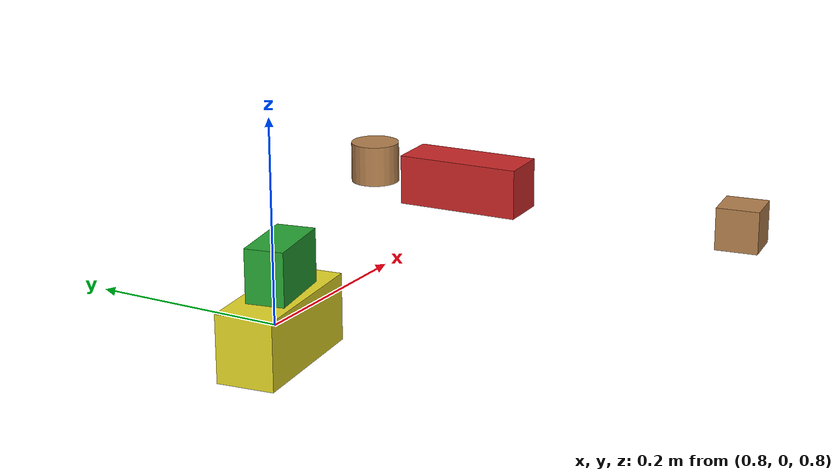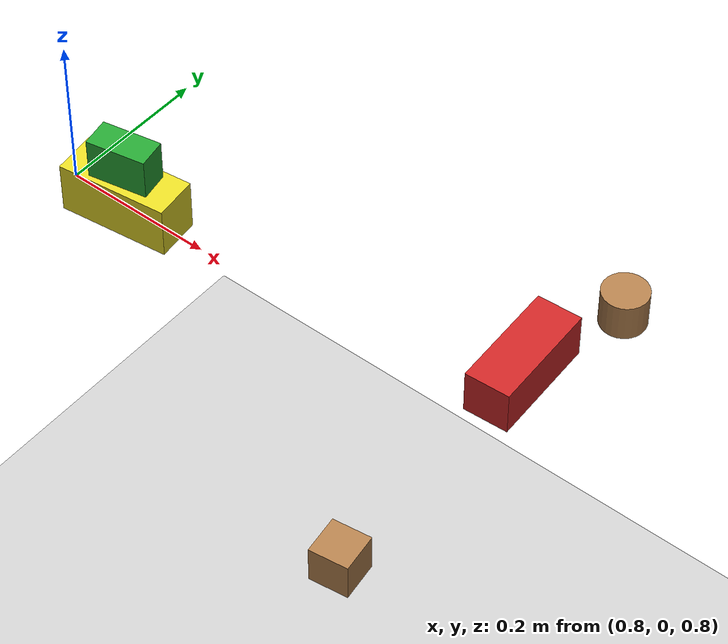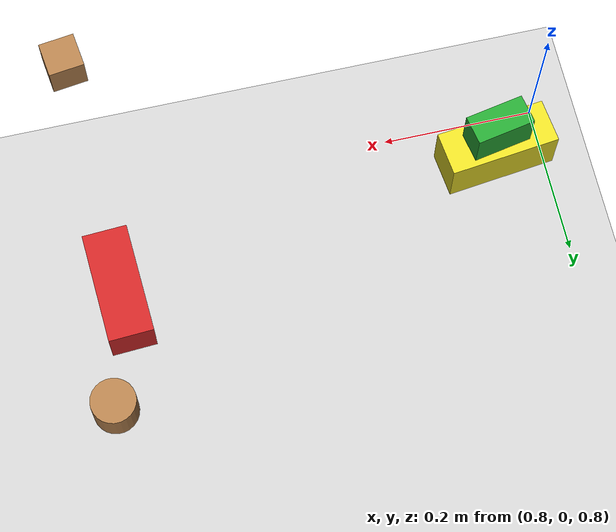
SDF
<sdf version="1.4">
 <world name="default">
  <light name="sun" type="directional">
   <pose>0 0 10 0 -0 0</pose>
   <diffuse>0.8 0.8 0.8 1</diffuse>
   <specular>0.2 0.2 0.2 1</specular>
   <attenuation>
    <range>1000</range>
    <constant>0.9</constant>
    <linear>0.01</linear>
    <quadratic>0.001</quadratic>
   </attenuation>
   <direction>-0.5 0.1 -0.9</direction>
  </light>
  <scene><shadows>0</shadows><ambient>0.4 0.4 0.4 1</ambient><background>0.7 0.7 0.7 1</background></scene>
  <model name="ground_plane">
   <static>1</static>
   <link name="link">
    <collision name="collision">
     <geometry><plane><normal>0 0 1</normal><size>100 100</size></plane></geometry>
     <surface><friction><ode><mu>100</mu><mu2>50</mu2></ode></friction></surface>
    </collision>
    <visual name="visual">
     <cast_shadows>0</cast_shadows>
     <geometry><plane><normal>0 0 1</normal><size>100 100</size></plane></geometry>
     <material>
      <script><uri>file://media/materials/scripts/gazebo.material</uri><name>Gazebo/Grey</name></script>
     </material>
    </visual>
    <velocity_decay><linear>0</linear><angular>0</angular></velocity_decay>
   </link>
  </model>
  <physics type="ode">
   <max_step_size>0.001</max_step_size>
   <real_time_factor>1</real_time_factor>
   <real_time_update_rate>1000</real_time_update_rate>
   <gravity>0 0 -9.8</gravity>
  </physics>
  <spherical_coordinates>
   <surface_model>EARTH_WGS84</surface_model>
   <latitude_deg>0</latitude_deg>
   <longitude_deg>0</longitude_deg>
   <elevation>0</elevation>
   <heading_deg>0</heading_deg>
  </spherical_coordinates>
  <model name="wood_cube_5cm">
   <link name="link">
    <pose>0 0 0.05 0 -0 0</pose>
    <inertial>
     <mass>0.01</mass>
     <inertia>
      <ixx>0.000101167</ixx>
      <ixy>0</ixy>
      <ixz>0</ixz>
      <iyy>6.1167e-05</iyy>
      <iyz>0</iyz>
      <izz>6.1167e-05</izz>
     </inertia>
    </inertial>
    <collision name="collision">
     <geometry><box><size>0.05 0.05 0.05</size></box></geometry>
     <surface><contact><ode><max_vel>0.1</max_vel><min_depth>0.001</min_depth></ode></contact></surface>
    </collision>
    <visual name="visual">
     <geometry><box><size>0.05 0.05 0.05</size></box></geometry>
     <material>
      <script><uri>file://media/materials/scripts/gazebo.material</uri><name>Gazebo/Wood</name></script>
     </material>
    </visual>
    <velocity_decay><linear>0</linear><angular>0</angular></velocity_decay>
   </link>
   <pose>1.40035 -0.231091 0.714992 -1e-06 -7.8e-05 0.135269</pose>
   <static>0</static>
  </model>
  <model name="wood_cylinder_5x2cm">
   <link name="link">
    <pose>0 0 0.05 0 -0 0</pose>
    <inertial>
     <mass>0.01</mass>
     <inertia>
      <ixx>0.000101167</ixx>
      <ixy>0</ixy>
      <ixz>0</ixz>
      <iyy>6.1167e-05</iyy>
      <iyz>0</iyz>
      <izz>6.1167e-05</izz>
     </inertia>
    </inertial>
    <collision name="collision">
     <geometry><cylinder><radius>0.03</radius><length>0.05</length></cylinder></geometry>
     <surface><contact><ode><max_vel>0.1</max_vel><min_depth>0.001</min_depth></ode></contact></surface>
    </collision>
    <visual name="visual">
     <geometry><cylinder><radius>0.03</radius><length>0.05</length></cylinder></geometry>
     <material>
      <script><uri>file://media/materials/scripts/gazebo.material</uri><name>Gazebo/Wood</name></script>
     </material>
    </visual>
    <velocity_decay><linear>0</linear><angular>0</angular></velocity_decay>
   </link>
   <pose>1.42039 0.268882 0.714983 -2.9e-05 -0.000268 3.01313</pose>
   <static>0</static>
  </model>
  <model name="rectangle_green">
   <link name="link">
    <pose>0 0 0.05 0 -0 0</pose>
    <inertial>
     <mass>0.01</mass>
     <inertia>
      <ixx>0.000101167</ixx>
      <ixy>0</ixy>
      <ixz>0</ixz>
      <iyy>6.1167e-05</iyy>
      <iyz>0</iyz>
      <izz>6.1167e-05</izz>
     </inertia>
    </inertial>
    <collision name="collision">
     <geometry><box><size>0.06 0.08 0.04</size></box></geometry>
     <surface><contact><ode><max_vel>0.1</max_vel><min_depth>0.001</min_depth></ode></contact></surface>
    </collision>
    <visual name="visual">
     <geometry><box><size>0.06 0.08 0.04</size></box></geometry>
     <material>
      <script><uri>file://media/materials/scripts/gazebo.material</uri><name>Gazebo/Green</name></script>
     </material>
    </visual>
    <velocity_decay><linear>0</linear><angular>0</angular></velocity_decay>
   </link>
   <pose>0.864084 -0.019898 0.834981 0.100214 -1.57058 -1.48323</pose>
   <static>0</static>
  </model>
  <model name="wood_rectangle">
   <link name="link">
    <pose>0 0 0.05 0 -0 0</pose>
    <inertial>
     <mass>0.01</mass>
     <inertia>
      <ixx>0.000101167</ixx>
      <ixy>0</ixy>
      <ixz>0</ixz>
      <iyy>6.1167e-05</iyy>
      <iyz>0</iyz>
      <izz>6.1167e-05</izz>
     </inertia>
    </inertial>
    <collision name="collision">
     <geometry><box><size>0.06 0.15 0.06</size></box></geometry>
     <surface><contact><ode><max_vel>0.1</max_vel><min_depth>0.001</min_depth></ode></contact></surface>
    </collision>
    <visual name="visual">
     <geometry><box><size>0.06 0.15 0.06</size></box></geometry>
     <material>
      <script><uri>file://media/materials/scripts/gazebo.material</uri><name>Gazebo/Red</name></script>
     </material>
    </visual>
    <velocity_decay><linear>0</linear><angular>0</angular></velocity_decay>
   </link>
   <pose>1.38541 0.116984 0.719973 0.000133 -4.9e-05 -3.08733</pose>
   <static>0</static>
  </model>
  <model name="wood_cube_10cm">
   <link name="link">
    <pose>0 0 0.05 0 -0 0</pose>
    <inertial>
     <mass>0.01</mass>
     <inertia>
      <ixx>0.000101167</ixx>
      <ixy>0</ixy>
      <ixz>0</ixz>
      <iyy>6.1167e-05</iyy>
      <iyz>0</iyz>
      <izz>6.1167e-05</izz>
     </inertia>
    </inertial>
    <collision name="collision">
     <geometry><box><size>0.06 0.15 0.07</size></box></geometry>
     <surface><contact><ode><max_vel>0.1</max_vel><min_depth>0.001</min_depth></ode></contact></surface>
    </collision>
    <visual name="visual">
     <geometry><box><size>0.06 0.15 0.07</size></box></geometry>
     <material>
      <script><uri>file://media/materials/scripts/gazebo.material</uri><name>Gazebo/Yellow</name></script>
     </material>
    </visual>
    <velocity_decay><linear>0</linear><angular>0</angular></velocity_decay>
   </link>
   <pose>0.852179 0.029628 0.724996 3.9e-05 4.2e-05 -1.45247</pose>
   <static>0</static>
  </model>
 </world>
</sdf>
